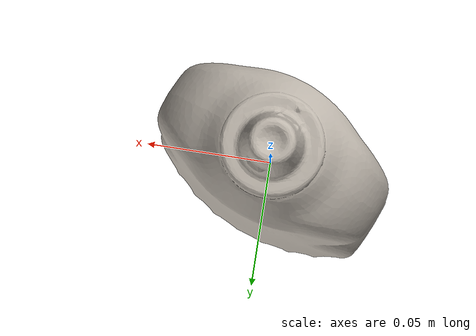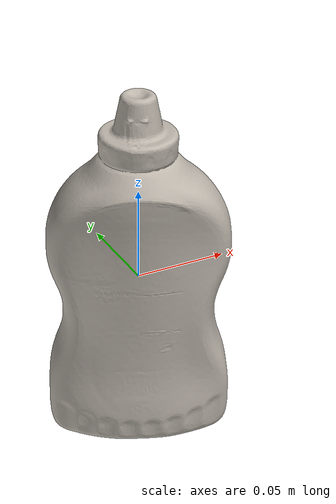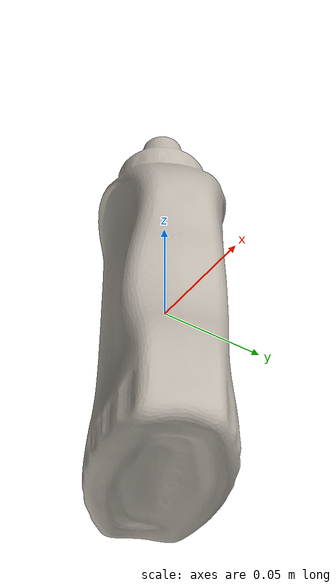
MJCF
<mujoco model="textured_centered">
  <default>
    <default class="visual">
      <geom group="2" type="mesh" contype="0" conaffinity="0"/>
    </default>
    <default class="collision">
      <geom group="3" type="mesh"/>
    </default>
  </default>
  <asset>
    <texture type="2d" name="texture_map" file="texture_map.png"/>
    <material name="material_0.002" texture="texture_map" specular="0.0" shininess="0.0"/>
    <mesh file="textured_centered.obj"/>
    <mesh file="textured_centered_collision_0.obj"/>
    <mesh file="textured_centered_collision_1.obj"/>
    <mesh file="textured_centered_collision_2.obj"/>
  </asset>
  <worldbody>
    <body name="textured_centered">
      <geom material="material_0.002" mesh="textured_centered" class="visual"/>
      <geom mesh="textured_centered_collision_0" rgba="0.8397003110654381 0.896213177004709 0.8197400970618086 1" class="collision"/>
      <geom mesh="textured_centered_collision_1" rgba="0.32777156168873156 0.17345726874531053 0.5108493141668634 1" class="collision"/>
      <geom mesh="textured_centered_collision_2" rgba="0.259221096587142 0.015359765944062742 0.6556485644649669 1" class="collision"/>
    </body>
  </worldbody>
</mujoco>
